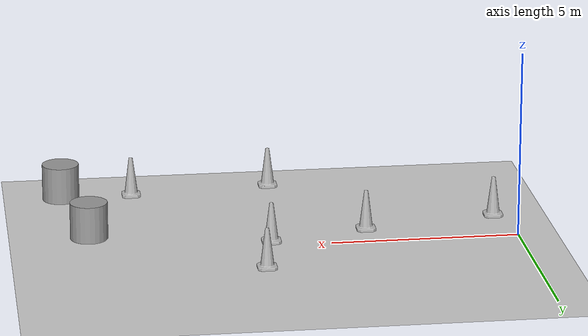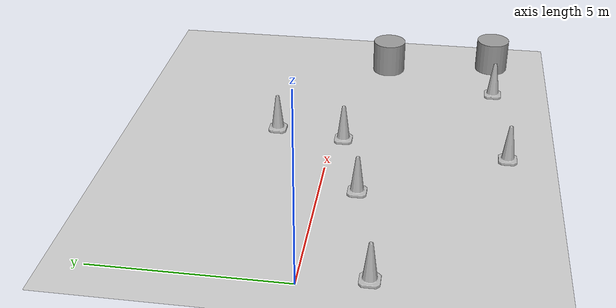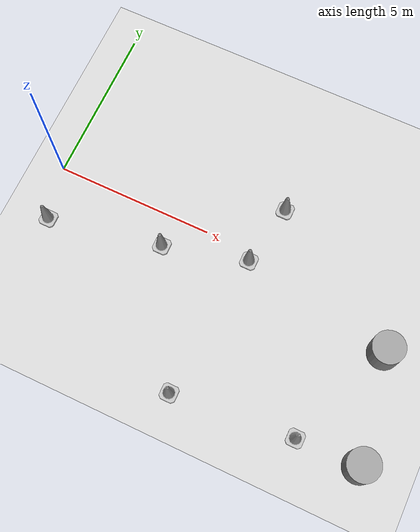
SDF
<sdf version="1.7">
 <world name="default">
  <light name="sun" type="directional">
   <pose>0 0 10 0 -0 0</pose>
   <diffuse>0.8 0.8 0.8 1</diffuse>
   <specular>0.2 0.2 0.2 1</specular>
   <attenuation>
    <range>1000</range>
    <constant>0.9</constant>
    <linear>0.01</linear>
    <quadratic>0.001</quadratic>
   </attenuation>
   <direction>-0.5 0.1 -0.9</direction>
   <spot><inner_angle>0</inner_angle><outer_angle>0</outer_angle><falloff>0</falloff></spot>
  </light>
  <model name="ground_plane">
   <static>1</static>
   <link name="link">
    <collision name="collision">
     <geometry><plane><normal>0 0 1</normal><size>100 100</size></plane></geometry>
     <surface><friction><ode><mu>100</mu><mu2>50</mu2></ode></friction></surface>
    </collision>
    <visual name="visual">
     <cast_shadows>0</cast_shadows>
     <geometry><plane><normal>0 0 1</normal><size>100 100</size></plane></geometry>
     <material>
      <script><uri>file://media/materials/scripts/gazebo.material</uri><name>Gazebo/Grey</name></script>
     </material>
    </visual>
   </link>
  </model>
  <gravity>0 0 -9.8</gravity>
  <magnetic_field>6e-06 2.3e-05 -4.2e-05</magnetic_field>
  <atmosphere type="adiabatic"/>
  <physics type="ode">
   <max_step_size>0.001</max_step_size>
   <real_time_factor>1</real_time_factor>
   <real_time_update_rate>1000</real_time_update_rate>
  </physics>
  <scene><ambient>0.4 0.4 0.4 1</ambient><background>0.7 0.7 0.7 1</background><shadows>1</shadows></scene>
  <audio><device>default</device></audio>
  <spherical_coordinates>
   <surface_model>EARTH_WGS84</surface_model>
   <latitude_deg>0</latitude_deg>
   <longitude_deg>0</longitude_deg>
   <elevation>0</elevation>
   <heading_deg>0</heading_deg>
  </spherical_coordinates>
  <model name="Construction Cone">
   <link name="link">
    <collision name="collision">
     <geometry>
      <mesh><scale>10 10 10</scale><uri>model://construction_cone/meshes/construction_cone.dae</uri></mesh>
     </geometry>
    </collision>
    <visual name="visual">
     <geometry>
      <mesh><scale>10 10 10</scale><uri>model://construction_cone/meshes/construction_cone.dae</uri></mesh>
     </geometry>
    </visual>
    <inertial>
     <inertia><ixx>1</ixx><ixy>0</ixy><ixz>0</ixz><iyy>1</iyy><iyz>0</iyz><izz>1</izz></inertia>
     <mass>1</mass>
    </inertial>
   </link>
   <pose>0.36279 -1.66814 -5e-06 -4e-06 1e-06 0</pose>
  </model>
  <model name="Construction Cone_0">
   <link name="link">
    <collision name="collision">
     <geometry>
      <mesh><scale>10 10 10</scale><uri>model://construction_cone/meshes/construction_cone.dae</uri></mesh>
     </geometry>
    </collision>
    <visual name="visual">
     <geometry>
      <mesh><scale>10 10 10</scale><uri>model://construction_cone/meshes/construction_cone.dae</uri></mesh>
     </geometry>
    </visual>
    <inertial>
     <inertia><ixx>1</ixx><ixy>0</ixy><ixz>0</ixz><iyy>1</iyy><iyz>0</iyz><izz>1</izz></inertia>
     <mass>1</mass>
    </inertial>
   </link>
   <pose>3.93873 -0.989149 -8e-06 7e-06 -0 0</pose>
  </model>
  <model name="Construction Cone_1">
   <link name="link">
    <collision name="collision">
     <geometry>
      <mesh><scale>10 10 10</scale><uri>model://construction_cone/meshes/construction_cone.dae</uri></mesh>
     </geometry>
    </collision>
    <visual name="visual">
     <geometry>
      <mesh><scale>10 10 10</scale><uri>model://construction_cone/meshes/construction_cone.dae</uri></mesh>
     </geometry>
    </visual>
    <inertial>
     <inertia><ixx>1</ixx><ixy>0</ixy><ixz>0</ixz><iyy>1</iyy><iyz>0</iyz><izz>1</izz></inertia>
     <mass>1</mass>
    </inertial>
   </link>
   <pose>6.10048 -4.92425 -8e-06 1e-06 -0 0</pose>
  </model>
  <model name="Construction Cone_2">
   <link name="link">
    <collision name="collision">
     <geometry>
      <mesh><scale>10 10 10</scale><uri>model://construction_cone/meshes/construction_cone.dae</uri></mesh>
     </geometry>
    </collision>
    <visual name="visual">
     <geometry>
      <mesh><scale>10 10 10</scale><uri>model://construction_cone/meshes/construction_cone.dae</uri></mesh>
     </geometry>
    </visual>
    <inertial>
     <inertia><ixx>1</ixx><ixy>0</ixy><ixz>0</ixz><iyy>1</iyy><iyz>0</iyz><izz>1</izz></inertia>
     <mass>1</mass>
    </inertial>
   </link>
   <pose>6.55943 -0.313576 -1e-05 -0 -0 -0</pose>
  </model>
  <model name="Construction Cone_3">
   <link name="link">
    <collision name="collision">
     <geometry>
      <mesh><scale>10 10 10</scale><uri>model://construction_cone/meshes/construction_cone.dae</uri></mesh>
     </geometry>
    </collision>
    <visual name="visual">
     <geometry>
      <mesh><scale>10 10 10</scale><uri>model://construction_cone/meshes/construction_cone.dae</uri></mesh>
     </geometry>
    </visual>
    <inertial>
     <inertia><ixx>1</ixx><ixy>0</ixy><ixz>0</ixz><iyy>1</iyy><iyz>0</iyz><izz>1</izz></inertia>
     <mass>1</mass>
    </inertial>
   </link>
   <pose>6.91112 1.64468 -0 0 -1e-06 0</pose>
  </model>
  <model name="Construction Cone_4">
   <link name="link">
    <collision name="collision">
     <geometry>
      <mesh><scale>10 10 10</scale><uri>model://construction_cone/meshes/construction_cone.dae</uri></mesh>
     </geometry>
    </collision>
    <visual name="visual">
     <geometry>
      <mesh><scale>10 10 10</scale><uri>model://construction_cone/meshes/construction_cone.dae</uri></mesh>
     </geometry>
    </visual>
    <inertial>
     <inertia><ixx>1</ixx><ixy>0</ixy><ixz>0</ixz><iyy>1</iyy><iyz>0</iyz><izz>1</izz></inertia>
     <mass>1</mass>
    </inertial>
   </link>
   <pose>9.92292 -4.56482 -0 0 -0 0</pose>
  </model>
  <model name="unit_cylinder">
   <pose>11.301 -1.23306 0.499993 -3e-06 -4e-06 -0</pose>
   <link name="link">
    <inertial>
     <mass>1</mass>
     <inertia><ixx>0.145833</ixx><ixy>0</ixy><ixz>0</ixz><iyy>0.145833</iyy><iyz>0</iyz><izz>0.125</izz></inertia>
    </inertial>
    <collision name="collision">
     <geometry><cylinder><radius>0.5</radius><length>1</length></cylinder></geometry>
    </collision>
    <visual name="visual">
     <geometry><cylinder><radius>0.5</radius><length>1</length></cylinder></geometry>
     <material>
      <script><name>Gazebo/Grey</name><uri>file://media/materials/scripts/gazebo.material</uri></script>
     </material>
    </visual>
   </link>
  </model>
  <model name="unit_cylinder_0">
   <pose>11.8556 -4.53144 0.499997 3e-06 4e-06 -0</pose>
   <link name="link">
    <inertial>
     <mass>1</mass>
     <inertia><ixx>0.145833</ixx><ixy>0</ixy><ixz>0</ixz><iyy>0.145833</iyy><iyz>0</iyz><izz>0.125</izz></inertia>
    </inertial>
    <collision name="collision">
     <geometry><cylinder><radius>0.5</radius><length>1</length></cylinder></geometry>
    </collision>
    <visual name="visual">
     <geometry><cylinder><radius>0.5</radius><length>1</length></cylinder></geometry>
     <material>
      <script><name>Gazebo/Grey</name><uri>file://media/materials/scripts/gazebo.material</uri></script>
     </material>
    </visual>
   </link>
  </model>
 </world>
</sdf>
